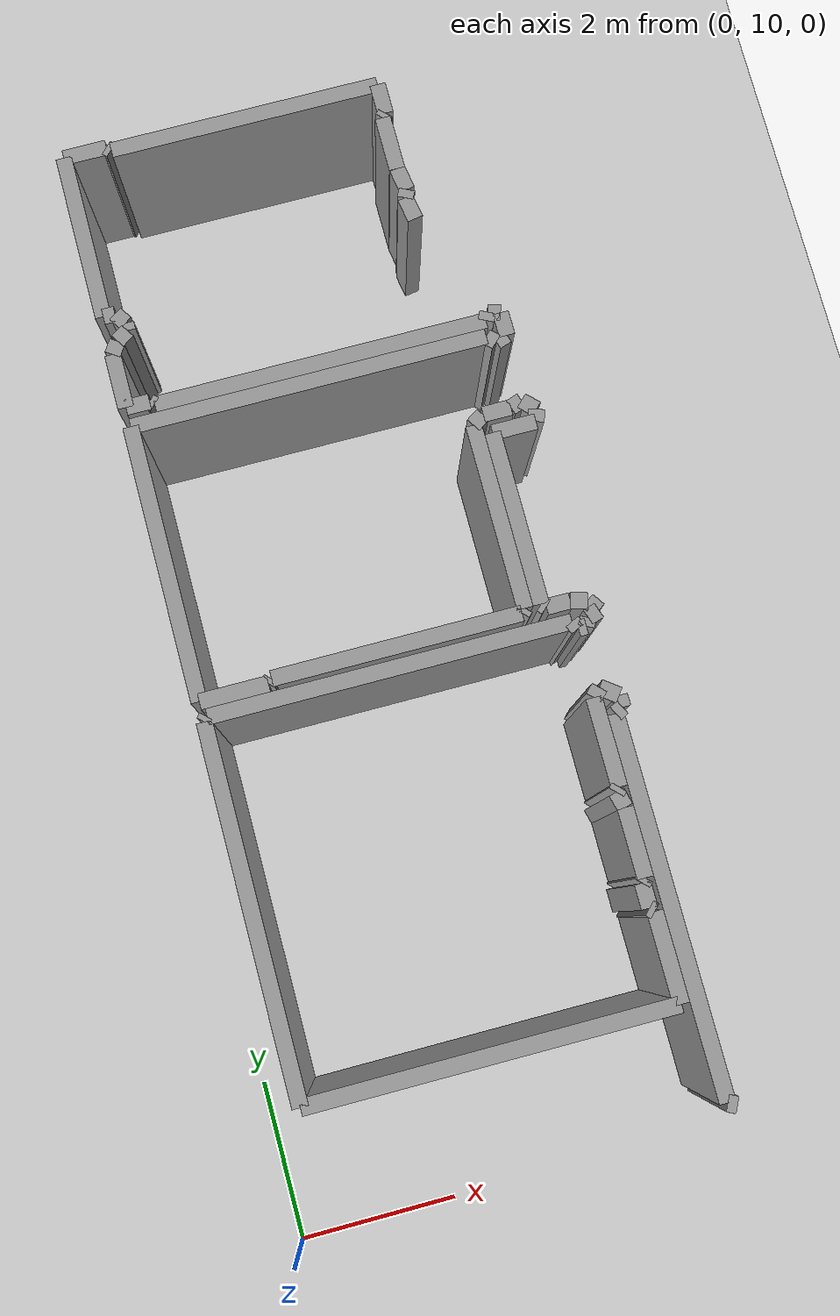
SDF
<sdf version="1.4">
 <world name="1_wall">
  <model name="ground_plane">
   <static>1</static>
   <link name="link">
    <collision name="collision">
     <geometry><plane><normal>0 0 1</normal><size>1000 1000</size></plane></geometry>
     <surface><friction><ode><mu>100</mu><mu2>50</mu2></ode></friction></surface>
    </collision>
    <visual name="visual">
     <cast_shadows>0</cast_shadows>
     <geometry><plane><normal>0 0 1</normal><size>10000 10000</size></plane></geometry>
     <material>
      <script><uri>file://media/materials/scripts/gazebo.material</uri><name>Gazebo/Grey</name></script>
     </material>
    </visual>
    <velocity_decay><linear>0</linear><angular>0</angular></velocity_decay>
   </link>
  </model>
  <model name="Wall_65">
   <static>1</static>
   <link name="Wall_65">
    <collision name="Wall_Collision_65">
     <geometry><box><size>0.111803398875 0.2 2.5</size></box></geometry>
     <pose>0 0 1.25 0 -0 0</pose>
    </collision>
    <visual name="Wall_Visual_65">
     <pose>0 0 1.25 0 -0 0</pose>
     <geometry><box><size>0.111803398875 0.2 2.5</size></box></geometry>
     <material>
      <script><uri>file://media/materials/scripts/gazebo.material</uri><name>Gazebo/Grey</name></script>
     </material>
    </visual>
    <velocity_decay><linear>0</linear><angular>0</angular></velocity_decay>
    <pose>5.35 10.575 0 0 0 2.67794504459</pose>
   </link>
  </model>
  <model name="Wall_66">
   <static>1</static>
   <link name="Wall_66">
    <collision name="Wall_Collision_66">
     <geometry><box><size>4.65 0.2 2.5</size></box></geometry>
     <pose>0 0 1.25 0 -0 0</pose>
    </collision>
    <visual name="Wall_Visual_66">
     <pose>0 0 1.25 0 -0 0</pose>
     <geometry><box><size>4.65 0.2 2.5</size></box></geometry>
     <material>
      <script><uri>file://media/materials/scripts/gazebo.material</uri><name>Gazebo/Grey</name></script>
     </material>
    </visual>
    <velocity_decay><linear>0</linear><angular>0</angular></velocity_decay>
    <pose>5.3 12.925 0 0 0 1.57079632679</pose>
   </link>
  </model>
  <model name="Wall_67">
   <static>1</static>
   <link name="Wall_67">
    <collision name="Wall_Collision_67">
     <geometry><box><size>0.111803398875 0.2 2.5</size></box></geometry>
     <pose>0 0 1.25 0 -0 0</pose>
    </collision>
    <visual name="Wall_Visual_67">
     <pose>0 0 1.25 0 -0 0</pose>
     <geometry><box><size>0.111803398875 0.2 2.5</size></box></geometry>
     <material>
      <script><uri>file://media/materials/scripts/gazebo.material</uri><name>Gazebo/Grey</name></script>
     </material>
    </visual>
    <velocity_decay><linear>0</linear><angular>0</angular></velocity_decay>
    <pose>5.35 15.275 0 0 0 0.463647609001</pose>
   </link>
  </model>
  <model name="Wall_68">
   <static>1</static>
   <link name="Wall_68">
    <collision name="Wall_Collision_68">
     <geometry><box><size>0.15 0.2 2.5</size></box></geometry>
     <pose>0 0 1.25 0 -0 0</pose>
    </collision>
    <visual name="Wall_Visual_68">
     <pose>0 0 1.25 0 -0 0</pose>
     <geometry><box><size>0.15 0.2 2.5</size></box></geometry>
     <material>
      <script><uri>file://media/materials/scripts/gazebo.material</uri><name>Gazebo/Grey</name></script>
     </material>
    </visual>
    <velocity_decay><linear>0</linear><angular>0</angular></velocity_decay>
    <pose>5.4 15.375 0 0 0 1.57079632679</pose>
   </link>
  </model>
  <model name="Wall_69">
   <static>1</static>
   <link name="Wall_69">
    <collision name="Wall_Collision_69">
     <geometry><box><size>0.25 0.2 2.5</size></box></geometry>
     <pose>0 0 1.25 0 -0 0</pose>
    </collision>
    <visual name="Wall_Visual_69">
     <pose>0 0 1.25 0 -0 0</pose>
     <geometry><box><size>0.25 0.2 2.5</size></box></geometry>
     <material>
      <script><uri>file://media/materials/scripts/gazebo.material</uri><name>Gazebo/Grey</name></script>
     </material>
    </visual>
    <velocity_decay><linear>0</linear><angular>0</angular></velocity_decay>
    <pose>5.3 15.525 0 0 0 2.4980915448</pose>
   </link>
  </model>
  <model name="Wall_70">
   <static>1</static>
   <link name="Wall_70">
    <collision name="Wall_Collision_70">
     <geometry><box><size>0.141421356237 0.2 2.5</size></box></geometry>
     <pose>0 0 1.25 0 -0 0</pose>
    </collision>
    <visual name="Wall_Visual_70">
     <pose>0 0 1.25 0 -0 0</pose>
     <geometry><box><size>0.141421356237 0.2 2.5</size></box></geometry>
     <material>
      <script><uri>file://media/materials/scripts/gazebo.material</uri><name>Gazebo/Grey</name></script>
     </material>
    </visual>
    <velocity_decay><linear>0</linear><angular>0</angular></velocity_decay>
    <pose>5.15 15.55 0 0 0 -2.35619449019</pose>
   </link>
  </model>
  <model name="Wall_71">
   <static>1</static>
   <link name="Wall_71">
    <collision name="Wall_Collision_71">
     <geometry><box><size>1.1 0.2 2.5</size></box></geometry>
     <pose>0 0 1.25 0 -0 0</pose>
    </collision>
    <visual name="Wall_Visual_71">
     <pose>0 0 1.25 0 -0 0</pose>
     <geometry><box><size>1.1 0.2 2.5</size></box></geometry>
     <material>
      <script><uri>file://media/materials/scripts/gazebo.material</uri><name>Gazebo/Grey</name></script>
     </material>
    </visual>
    <velocity_decay><linear>0</linear><angular>0</angular></velocity_decay>
    <pose>5.1 14.95 0 0 0 -1.57079632679</pose>
   </link>
  </model>
  <model name="Wall_72">
   <static>1</static>
   <link name="Wall_72">
    <collision name="Wall_Collision_72">
     <geometry><box><size>0.0707106781187 0.2 2.5</size></box></geometry>
     <pose>0 0 1.25 0 -0 0</pose>
    </collision>
    <visual name="Wall_Visual_72">
     <pose>0 0 1.25 0 -0 0</pose>
     <geometry><box><size>0.0707106781187 0.2 2.5</size></box></geometry>
     <material>
      <script><uri>file://media/materials/scripts/gazebo.material</uri><name>Gazebo/Grey</name></script>
     </material>
    </visual>
    <velocity_decay><linear>0</linear><angular>0</angular></velocity_decay>
    <pose>5.075 14.375 0 0 0 -2.35619449019</pose>
   </link>
  </model>
  <model name="Wall_73">
   <static>1</static>
   <link name="Wall_73">
    <collision name="Wall_Collision_73">
     <geometry><box><size>0.206155281281 0.2 2.5</size></box></geometry>
     <pose>0 0 1.25 0 -0 0</pose>
    </collision>
    <visual name="Wall_Visual_73">
     <pose>0 0 1.25 0 -0 0</pose>
     <geometry><box><size>0.206155281281 0.2 2.5</size></box></geometry>
     <material>
      <script><uri>file://media/materials/scripts/gazebo.material</uri><name>Gazebo/Grey</name></script>
     </material>
    </visual>
    <velocity_decay><linear>0</linear><angular>0</angular></velocity_decay>
    <pose>5.075 14.25 0 0 0 -1.32581766367</pose>
   </link>
  </model>
  <model name="Wall_74">
   <static>1</static>
   <link name="Wall_74">
    <collision name="Wall_Collision_74">
     <geometry><box><size>0.85 0.2 2.5</size></box></geometry>
     <pose>0 0 1.25 0 -0 0</pose>
    </collision>
    <visual name="Wall_Visual_74">
     <pose>0 0 1.25 0 -0 0</pose>
     <geometry><box><size>0.85 0.2 2.5</size></box></geometry>
     <material>
      <script><uri>file://media/materials/scripts/gazebo.material</uri><name>Gazebo/Grey</name></script>
     </material>
    </visual>
    <velocity_decay><linear>0</linear><angular>0</angular></velocity_decay>
    <pose>5.1 13.725 0 0 0 -1.57079632679</pose>
   </link>
  </model>
  <model name="Wall_75">
   <static>1</static>
   <link name="Wall_75">
    <collision name="Wall_Collision_75">
     <geometry><box><size>0.0707106781187 0.2 2.5</size></box></geometry>
     <pose>0 0 1.25 0 -0 0</pose>
    </collision>
    <visual name="Wall_Visual_75">
     <pose>0 0 1.25 0 -0 0</pose>
     <geometry><box><size>0.0707106781187 0.2 2.5</size></box></geometry>
     <material>
      <script><uri>file://media/materials/scripts/gazebo.material</uri><name>Gazebo/Grey</name></script>
     </material>
    </visual>
    <velocity_decay><linear>0</linear><angular>0</angular></velocity_decay>
    <pose>5.075 13.275 0 0 0 -2.35619449019</pose>
   </link>
  </model>
  <model name="Wall_76">
   <static>1</static>
   <link name="Wall_76">
    <collision name="Wall_Collision_76">
     <geometry><box><size>0.3 0.2 2.5</size></box></geometry>
     <pose>0 0 1.25 0 -0 0</pose>
    </collision>
    <visual name="Wall_Visual_76">
     <pose>0 0 1.25 0 -0 0</pose>
     <geometry><box><size>0.3 0.2 2.5</size></box></geometry>
     <material>
      <script><uri>file://media/materials/scripts/gazebo.material</uri><name>Gazebo/Grey</name></script>
     </material>
    </visual>
    <velocity_decay><linear>0</linear><angular>0</angular></velocity_decay>
    <pose>5.05 13.1 0 0 0 -1.57079632679</pose>
   </link>
  </model>
  <model name="Wall_77">
   <static>1</static>
   <link name="Wall_77">
    <collision name="Wall_Collision_77">
     <geometry><box><size>0.0707106781187 0.2 2.5</size></box></geometry>
     <pose>0 0 1.25 0 -0 0</pose>
    </collision>
    <visual name="Wall_Visual_77">
     <pose>0 0 1.25 0 -0 0</pose>
     <geometry><box><size>0.0707106781187 0.2 2.5</size></box></geometry>
     <material>
      <script><uri>file://media/materials/scripts/gazebo.material</uri><name>Gazebo/Grey</name></script>
     </material>
    </visual>
    <velocity_decay><linear>0</linear><angular>0</angular></velocity_decay>
    <pose>5.075 12.925 0 0 0 -0.785398163397</pose>
   </link>
  </model>
  <model name="Wall_78">
   <static>1</static>
   <link name="Wall_78">
    <collision name="Wall_Collision_78">
     <geometry><box><size>1.1 0.2 2.5</size></box></geometry>
     <pose>0 0 1.25 0 -0 0</pose>
    </collision>
    <visual name="Wall_Visual_78">
     <pose>0 0 1.25 0 -0 0</pose>
     <geometry><box><size>1.1 0.2 2.5</size></box></geometry>
     <material>
      <script><uri>file://media/materials/scripts/gazebo.material</uri><name>Gazebo/Grey</name></script>
     </material>
    </visual>
    <velocity_decay><linear>0</linear><angular>0</angular></velocity_decay>
    <pose>5.1 12.35 0 0 0 -1.57079632679</pose>
   </link>
  </model>
  <model name="Wall_79">
   <static>1</static>
   <link name="Wall_79">
    <collision name="Wall_Collision_79">
     <geometry><box><size>4.55 0.2 2.5</size></box></geometry>
     <pose>0 0 1.25 0 -0 0</pose>
    </collision>
    <visual name="Wall_Visual_79">
     <pose>0 0 1.25 0 -0 0</pose>
     <geometry><box><size>4.55 0.2 2.5</size></box></geometry>
     <material>
      <script><uri>file://media/materials/scripts/gazebo.material</uri><name>Gazebo/Grey</name></script>
     </material>
    </visual>
    <velocity_decay><linear>0</linear><angular>0</angular></velocity_decay>
    <pose>2.825 11.8 0 0 0 3.14159265359</pose>
   </link>
  </model>
  <model name="Wall_80">
   <static>1</static>
   <link name="Wall_80">
    <collision name="Wall_Collision_80">
     <geometry><box><size>4.6 0.2 2.5</size></box></geometry>
     <pose>0 0 1.25 0 -0 0</pose>
    </collision>
    <visual name="Wall_Visual_80">
     <pose>0 0 1.25 0 -0 0</pose>
     <geometry><box><size>4.6 0.2 2.5</size></box></geometry>
     <material>
      <script><uri>file://media/materials/scripts/gazebo.material</uri><name>Gazebo/Grey</name></script>
     </material>
    </visual>
    <velocity_decay><linear>0</linear><angular>0</angular></velocity_decay>
    <pose>0.55 14.1 0 0 0 1.57079632679</pose>
   </link>
  </model>
  <model name="Wall_81">
   <static>1</static>
   <link name="Wall_81">
    <collision name="Wall_Collision_81">
     <geometry><box><size>0.0707106781187 0.2 2.5</size></box></geometry>
     <pose>0 0 1.25 0 -0 0</pose>
    </collision>
    <visual name="Wall_Visual_81">
     <pose>0 0 1.25 0 -0 0</pose>
     <geometry><box><size>0.0707106781187 0.2 2.5</size></box></geometry>
     <material>
      <script><uri>file://media/materials/scripts/gazebo.material</uri><name>Gazebo/Grey</name></script>
     </material>
    </visual>
    <velocity_decay><linear>0</linear><angular>0</angular></velocity_decay>
    <pose>0.575 16.425 0 0 0 0.785398163397</pose>
   </link>
  </model>
  <model name="Wall_82">
   <static>1</static>
   <link name="Wall_82">
    <collision name="Wall_Collision_82">
     <geometry><box><size>4.5 0.2 2.5</size></box></geometry>
     <pose>0 0 1.25 0 -0 0</pose>
    </collision>
    <visual name="Wall_Visual_82">
     <pose>0 0 1.25 0 -0 0</pose>
     <geometry><box><size>4.5 0.2 2.5</size></box></geometry>
     <material>
      <script><uri>file://media/materials/scripts/gazebo.material</uri><name>Gazebo/Grey</name></script>
     </material>
    </visual>
    <velocity_decay><linear>0</linear><angular>0</angular></velocity_decay>
    <pose>2.85 16.45 0 0 0 0.0</pose>
   </link>
  </model>
  <model name="Wall_83">
   <static>1</static>
   <link name="Wall_83">
    <collision name="Wall_Collision_83">
     <geometry><box><size>0.111803398875 0.2 2.5</size></box></geometry>
     <pose>0 0 1.25 0 -0 0</pose>
    </collision>
    <visual name="Wall_Visual_83">
     <pose>0 0 1.25 0 -0 0</pose>
     <geometry><box><size>0.111803398875 0.2 2.5</size></box></geometry>
     <material>
      <script><uri>file://media/materials/scripts/gazebo.material</uri><name>Gazebo/Grey</name></script>
     </material>
    </visual>
    <velocity_decay><linear>0</linear><angular>0</angular></velocity_decay>
    <pose>5.125 16.4 0 0 0 -1.10714871779</pose>
   </link>
  </model>
  <model name="Wall_84">
   <static>1</static>
   <link name="Wall_84">
    <collision name="Wall_Collision_84">
     <geometry><box><size>0.1 0.2 2.5</size></box></geometry>
     <pose>0 0 1.25 0 -0 0</pose>
    </collision>
    <visual name="Wall_Visual_84">
     <pose>0 0 1.25 0 -0 0</pose>
     <geometry><box><size>0.1 0.2 2.5</size></box></geometry>
     <material>
      <script><uri>file://media/materials/scripts/gazebo.material</uri><name>Gazebo/Grey</name></script>
     </material>
    </visual>
    <velocity_decay><linear>0</linear><angular>0</angular></velocity_decay>
    <pose>5.2 16.35 0 0 0 0.0</pose>
   </link>
  </model>
  <model name="Wall_85">
   <static>1</static>
   <link name="Wall_85">
    <collision name="Wall_Collision_85">
     <geometry><box><size>0.111803398875 0.2 2.5</size></box></geometry>
     <pose>0 0 1.25 0 -0 0</pose>
    </collision>
    <visual name="Wall_Visual_85">
     <pose>0 0 1.25 0 -0 0</pose>
     <geometry><box><size>0.111803398875 0.2 2.5</size></box></geometry>
     <material>
      <script><uri>file://media/materials/scripts/gazebo.material</uri><name>Gazebo/Grey</name></script>
     </material>
    </visual>
    <velocity_decay><linear>0</linear><angular>0</angular></velocity_decay>
    <pose>5.275 16.4 0 0 0 1.10714871779</pose>
   </link>
  </model>
  <model name="Wall_86">
   <static>1</static>
   <link name="Wall_86">
    <collision name="Wall_Collision_86">
     <geometry><box><size>0.158113883008 0.2 2.5</size></box></geometry>
     <pose>0 0 1.25 0 -0 0</pose>
    </collision>
    <visual name="Wall_Visual_86">
     <pose>0 0 1.25 0 -0 0</pose>
     <geometry><box><size>0.158113883008 0.2 2.5</size></box></geometry>
     <material>
      <script><uri>file://media/materials/scripts/gazebo.material</uri><name>Gazebo/Grey</name></script>
     </material>
    </visual>
    <velocity_decay><linear>0</linear><angular>0</angular></velocity_decay>
    <pose>5.375 16.475 0 0 0 0.321750554397</pose>
   </link>
  </model>
  <model name="Wall_87">
   <static>1</static>
   <link name="Wall_87">
    <collision name="Wall_Collision_87">
     <geometry><box><size>0.180277563773 0.2 2.5</size></box></geometry>
     <pose>0 0 1.25 0 -0 0</pose>
    </collision>
    <visual name="Wall_Visual_87">
     <pose>0 0 1.25 0 -0 0</pose>
     <geometry><box><size>0.180277563773 0.2 2.5</size></box></geometry>
     <material>
      <script><uri>file://media/materials/scripts/gazebo.material</uri><name>Gazebo/Grey</name></script>
     </material>
    </visual>
    <velocity_decay><linear>0</linear><angular>0</angular></velocity_decay>
    <pose>5.4 16.575 0 0 0 2.15879893034</pose>
   </link>
  </model>
  <model name="Wall_88">
   <static>1</static>
   <link name="Wall_88">
    <collision name="Wall_Collision_88">
     <geometry><box><size>0.206155281281 0.2 2.5</size></box></geometry>
     <pose>0 0 1.25 0 -0 0</pose>
    </collision>
    <visual name="Wall_Visual_88">
     <pose>0 0 1.25 0 -0 0</pose>
     <geometry><box><size>0.206155281281 0.2 2.5</size></box></geometry>
     <material>
      <script><uri>file://media/materials/scripts/gazebo.material</uri><name>Gazebo/Grey</name></script>
     </material>
    </visual>
    <velocity_decay><linear>0</linear><angular>0</angular></velocity_decay>
    <pose>5.25 16.675 0 0 0 2.89661399046</pose>
   </link>
  </model>
  <model name="Wall_89">
   <static>1</static>
   <link name="Wall_89">
    <collision name="Wall_Collision_89">
     <geometry><box><size>0.3 0.2 2.5</size></box></geometry>
     <pose>0 0 1.25 0 -0 0</pose>
    </collision>
    <visual name="Wall_Visual_89">
     <pose>0 0 1.25 0 -0 0</pose>
     <geometry><box><size>0.3 0.2 2.5</size></box></geometry>
     <material>
      <script><uri>file://media/materials/scripts/gazebo.material</uri><name>Gazebo/Grey</name></script>
     </material>
    </visual>
    <velocity_decay><linear>0</linear><angular>0</angular></velocity_decay>
    <pose>5.0 16.7 0 0 0 3.14159265359</pose>
   </link>
  </model>
  <model name="Wall_90">
   <static>1</static>
   <link name="Wall_90">
    <collision name="Wall_Collision_90">
     <geometry><box><size>0.0707106781187 0.2 2.5</size></box></geometry>
     <pose>0 0 1.25 0 -0 0</pose>
    </collision>
    <visual name="Wall_Visual_90">
     <pose>0 0 1.25 0 -0 0</pose>
     <geometry><box><size>0.0707106781187 0.2 2.5</size></box></geometry>
     <material>
      <script><uri>file://media/materials/scripts/gazebo.material</uri><name>Gazebo/Grey</name></script>
     </material>
    </visual>
    <velocity_decay><linear>0</linear><angular>0</angular></velocity_decay>
    <pose>4.825 16.725 0 0 0 2.35619449019</pose>
   </link>
  </model>
  <model name="Wall_91">
   <static>1</static>
   <link name="Wall_91">
    <collision name="Wall_Collision_91">
     <geometry><box><size>2.2 0.2 2.5</size></box></geometry>
     <pose>0 0 1.25 0 -0 0</pose>
    </collision>
    <visual name="Wall_Visual_91">
     <pose>0 0 1.25 0 -0 0</pose>
     <geometry><box><size>2.2 0.2 2.5</size></box></geometry>
     <material>
      <script><uri>file://media/materials/scripts/gazebo.material</uri><name>Gazebo/Grey</name></script>
     </material>
    </visual>
    <velocity_decay><linear>0</linear><angular>0</angular></velocity_decay>
    <pose>4.8 17.85 0 0 0 1.57079632679</pose>
   </link>
  </model>
  <model name="Wall_92">
   <static>1</static>
   <link name="Wall_92">
    <collision name="Wall_Collision_92">
     <geometry><box><size>0.55 0.2 2.5</size></box></geometry>
     <pose>0 0 1.25 0 -0 0</pose>
    </collision>
    <visual name="Wall_Visual_92">
     <pose>0 0 1.25 0 -0 0</pose>
     <geometry><box><size>0.55 0.2 2.5</size></box></geometry>
     <material>
      <script><uri>file://media/materials/scripts/gazebo.material</uri><name>Gazebo/Grey</name></script>
     </material>
    </visual>
    <velocity_decay><linear>0</linear><angular>0</angular></velocity_decay>
    <pose>5.075 18.95 0 0 0 0.0</pose>
   </link>
  </model>
  <model name="Wall_93">
   <static>1</static>
   <link name="Wall_93">
    <collision name="Wall_Collision_93">
     <geometry><box><size>0.158113883008 0.2 2.5</size></box></geometry>
     <pose>0 0 1.25 0 -0 0</pose>
    </collision>
    <visual name="Wall_Visual_93">
     <pose>0 0 1.25 0 -0 0</pose>
     <geometry><box><size>0.158113883008 0.2 2.5</size></box></geometry>
     <material>
      <script><uri>file://media/materials/scripts/gazebo.material</uri><name>Gazebo/Grey</name></script>
     </material>
    </visual>
    <velocity_decay><linear>0</linear><angular>0</angular></velocity_decay>
    <pose>5.375 19.025 0 0 0 1.2490457724</pose>
   </link>
  </model>
  <model name="Wall_94">
   <static>1</static>
   <link name="Wall_94">
    <collision name="Wall_Collision_94">
     <geometry><box><size>0.212132034356 0.2 2.5</size></box></geometry>
     <pose>0 0 1.25 0 -0 0</pose>
    </collision>
    <visual name="Wall_Visual_94">
     <pose>0 0 1.25 0 -0 0</pose>
     <geometry><box><size>0.212132034356 0.2 2.5</size></box></geometry>
     <material>
      <script><uri>file://media/materials/scripts/gazebo.material</uri><name>Gazebo/Grey</name></script>
     </material>
    </visual>
    <velocity_decay><linear>0</linear><angular>0</angular></velocity_decay>
    <pose>5.325 19.175 0 0 0 2.35619449019</pose>
   </link>
  </model>
  <model name="Wall_95">
   <static>1</static>
   <link name="Wall_95">
    <collision name="Wall_Collision_95">
     <geometry><box><size>0.158113883008 0.2 2.5</size></box></geometry>
     <pose>0 0 1.25 0 -0 0</pose>
    </collision>
    <visual name="Wall_Visual_95">
     <pose>0 0 1.25 0 -0 0</pose>
     <geometry><box><size>0.158113883008 0.2 2.5</size></box></geometry>
     <material>
      <script><uri>file://media/materials/scripts/gazebo.material</uri><name>Gazebo/Grey</name></script>
     </material>
    </visual>
    <velocity_decay><linear>0</linear><angular>0</angular></velocity_decay>
    <pose>5.175 19.225 0 0 0 -2.81984209919</pose>
   </link>
  </model>
  <model name="Wall_96">
   <static>1</static>
   <link name="Wall_96">
    <collision name="Wall_Collision_96">
     <geometry><box><size>0.35 0.2 2.5</size></box></geometry>
     <pose>0 0 1.25 0 -0 0</pose>
    </collision>
    <visual name="Wall_Visual_96">
     <pose>0 0 1.25 0 -0 0</pose>
     <geometry><box><size>0.35 0.2 2.5</size></box></geometry>
     <material>
      <script><uri>file://media/materials/scripts/gazebo.material</uri><name>Gazebo/Grey</name></script>
     </material>
    </visual>
    <velocity_decay><linear>0</linear><angular>0</angular></velocity_decay>
    <pose>4.925 19.2 0 0 0 3.14159265359</pose>
   </link>
  </model>
  <model name="Wall_97">
   <static>1</static>
   <link name="Wall_97">
    <collision name="Wall_Collision_97">
     <geometry><box><size>0.180277563773 0.2 2.5</size></box></geometry>
     <pose>0 0 1.25 0 -0 0</pose>
    </collision>
    <visual name="Wall_Visual_97">
     <pose>0 0 1.25 0 -0 0</pose>
     <geometry><box><size>0.180277563773 0.2 2.5</size></box></geometry>
     <material>
      <script><uri>file://media/materials/scripts/gazebo.material</uri><name>Gazebo/Grey</name></script>
     </material>
    </visual>
    <velocity_decay><linear>0</linear><angular>0</angular></velocity_decay>
    <pose>4.675 19.15 0 0 0 -2.55359005004</pose>
   </link>
  </model>
  <model name="Wall_98">
   <static>1</static>
   <link name="Wall_98">
    <collision name="Wall_Collision_98">
     <geometry><box><size>2.35 0.2 2.5</size></box></geometry>
     <pose>0 0 1.25 0 -0 0</pose>
    </collision>
    <visual name="Wall_Visual_98">
     <pose>0 0 1.25 0 -0 0</pose>
     <geometry><box><size>2.35 0.2 2.5</size></box></geometry>
     <material>
      <script><uri>file://media/materials/scripts/gazebo.material</uri><name>Gazebo/Grey</name></script>
     </material>
    </visual>
    <velocity_decay><linear>0</linear><angular>0</angular></velocity_decay>
    <pose>4.6 17.925 0 0 0 -1.57079632679</pose>
   </link>
  </model>
  <model name="Wall_99">
   <static>1</static>
   <link name="Wall_99">
    <collision name="Wall_Collision_99">
     <geometry><box><size>0.0707106781187 0.2 2.5</size></box></geometry>
     <pose>0 0 1.25 0 -0 0</pose>
    </collision>
    <visual name="Wall_Visual_99">
     <pose>0 0 1.25 0 -0 0</pose>
     <geometry><box><size>0.0707106781187 0.2 2.5</size></box></geometry>
     <material>
      <script><uri>file://media/materials/scripts/gazebo.material</uri><name>Gazebo/Grey</name></script>
     </material>
    </visual>
    <velocity_decay><linear>0</linear><angular>0</angular></velocity_decay>
    <pose>4.575 16.725 0 0 0 -2.35619449019</pose>
   </link>
  </model>
  <model name="Wall_100">
   <static>1</static>
   <link name="Wall_100">
    <collision name="Wall_Collision_100">
     <geometry><box><size>3.1 0.2 2.5</size></box></geometry>
     <pose>0 0 1.25 0 -0 0</pose>
    </collision>
    <visual name="Wall_Visual_100">
     <pose>0 0 1.25 0 -0 0</pose>
     <geometry><box><size>3.1 0.2 2.5</size></box></geometry>
     <material>
      <script><uri>file://media/materials/scripts/gazebo.material</uri><name>Gazebo/Grey</name></script>
     </material>
    </visual>
    <velocity_decay><linear>0</linear><angular>0</angular></velocity_decay>
    <pose>3.0 16.7 0 0 0 3.14159265359</pose>
   </link>
  </model>
  <model name="Wall_101">
   <static>1</static>
   <link name="Wall_101">
    <collision name="Wall_Collision_101">
     <geometry><box><size>0.0707106781187 0.2 2.5</size></box></geometry>
     <pose>0 0 1.25 0 -0 0</pose>
    </collision>
    <visual name="Wall_Visual_101">
     <pose>0 0 1.25 0 -0 0</pose>
     <geometry><box><size>0.0707106781187 0.2 2.5</size></box></geometry>
     <material>
      <script><uri>file://media/materials/scripts/gazebo.material</uri><name>Gazebo/Grey</name></script>
     </material>
    </visual>
    <velocity_decay><linear>0</linear><angular>0</angular></velocity_decay>
    <pose>1.425 16.675 0 0 0 -2.35619449019</pose>
   </link>
  </model>
  <model name="Wall_102">
   <static>1</static>
   <link name="Wall_102">
    <collision name="Wall_Collision_102">
     <geometry><box><size>0.85 0.2 2.5</size></box></geometry>
     <pose>0 0 1.25 0 -0 0</pose>
    </collision>
    <visual name="Wall_Visual_102">
     <pose>0 0 1.25 0 -0 0</pose>
     <geometry><box><size>0.85 0.2 2.5</size></box></geometry>
     <material>
      <script><uri>file://media/materials/scripts/gazebo.material</uri><name>Gazebo/Grey</name></script>
     </material>
    </visual>
    <velocity_decay><linear>0</linear><angular>0</angular></velocity_decay>
    <pose>0.975 16.65 0 0 0 3.14159265359</pose>
   </link>
  </model>
  <model name="Wall_103">
   <static>1</static>
   <link name="Wall_103">
    <collision name="Wall_Collision_103">
     <geometry><box><size>3.5 0.2 2.5</size></box></geometry>
     <pose>0 0 1.25 0 -0 0</pose>
    </collision>
    <visual name="Wall_Visual_103">
     <pose>0 0 1.25 0 -0 0</pose>
     <geometry><box><size>3.5 0.2 2.5</size></box></geometry>
     <material>
      <script><uri>file://media/materials/scripts/gazebo.material</uri><name>Gazebo/Grey</name></script>
     </material>
    </visual>
    <velocity_decay><linear>0</linear><angular>0</angular></velocity_decay>
    <pose>0.55 18.4 0 0 0 1.57079632679</pose>
   </link>
  </model>
  <model name="Wall_104">
   <static>1</static>
   <link name="Wall_104">
    <collision name="Wall_Collision_104">
     <geometry><box><size>4.5 0.2 2.5</size></box></geometry>
     <pose>0 0 1.25 0 -0 0</pose>
    </collision>
    <visual name="Wall_Visual_104">
     <pose>0 0 1.25 0 -0 0</pose>
     <geometry><box><size>4.5 0.2 2.5</size></box></geometry>
     <material>
      <script><uri>file://media/materials/scripts/gazebo.material</uri><name>Gazebo/Grey</name></script>
     </material>
    </visual>
    <velocity_decay><linear>0</linear><angular>0</angular></velocity_decay>
    <pose>2.8 20.15 0 0 0 0.0</pose>
   </link>
  </model>
  <model name="Wall_105">
   <static>1</static>
   <link name="Wall_105">
    <collision name="Wall_Collision_105">
     <geometry><box><size>0.141421356237 0.2 2.5</size></box></geometry>
     <pose>0 0 1.25 0 -0 0</pose>
    </collision>
    <visual name="Wall_Visual_105">
     <pose>0 0 1.25 0 -0 0</pose>
     <geometry><box><size>0.141421356237 0.2 2.5</size></box></geometry>
     <material>
      <script><uri>file://media/materials/scripts/gazebo.material</uri><name>Gazebo/Grey</name></script>
     </material>
    </visual>
    <velocity_decay><linear>0</linear><angular>0</angular></velocity_decay>
    <pose>5.1 20.1 0 0 0 -0.785398163397</pose>
   </link>
  </model>
  <model name="Wall_106">
   <static>1</static>
   <link name="Wall_106">
    <collision name="Wall_Collision_106">
     <geometry><box><size>0.158113883008 0.2 2.5</size></box></geometry>
     <pose>0 0 1.25 0 -0 0</pose>
    </collision>
    <visual name="Wall_Visual_106">
     <pose>0 0 1.25 0 -0 0</pose>
     <geometry><box><size>0.158113883008 0.2 2.5</size></box></geometry>
     <material>
      <script><uri>file://media/materials/scripts/gazebo.material</uri><name>Gazebo/Grey</name></script>
     </material>
    </visual>
    <velocity_decay><linear>0</linear><angular>0</angular></velocity_decay>
    <pose>5.225 20.075 0 0 0 0.321750554397</pose>
   </link>
  </model>
  <model name="Wall_107">
   <static>1</static>
   <link name="Wall_107">
    <collision name="Wall_Collision_107">
     <geometry><box><size>0.3 0.2 2.5</size></box></geometry>
     <pose>0 0 1.25 0 -0 0</pose>
    </collision>
    <visual name="Wall_Visual_107">
     <pose>0 0 1.25 0 -0 0</pose>
     <geometry><box><size>0.3 0.2 2.5</size></box></geometry>
     <material>
      <script><uri>file://media/materials/scripts/gazebo.material</uri><name>Gazebo/Grey</name></script>
     </material>
    </visual>
    <velocity_decay><linear>0</linear><angular>0</angular></velocity_decay>
    <pose>5.3 20.25 0 0 0 1.57079632679</pose>
   </link>
  </model>
  <model name="Wall_108">
   <static>1</static>
   <link name="Wall_108">
    <collision name="Wall_Collision_108">
     <geometry><box><size>0.158113883008 0.2 2.5</size></box></geometry>
     <pose>0 0 1.25 0 -0 0</pose>
    </collision>
    <visual name="Wall_Visual_108">
     <pose>0 0 1.25 0 -0 0</pose>
     <geometry><box><size>0.158113883008 0.2 2.5</size></box></geometry>
     <material>
      <script><uri>file://media/materials/scripts/gazebo.material</uri><name>Gazebo/Grey</name></script>
     </material>
    </visual>
    <velocity_decay><linear>0</linear><angular>0</angular></velocity_decay>
    <pose>5.225 20.425 0 0 0 2.81984209919</pose>
   </link>
  </model>
  <model name="Wall_109">
   <static>1</static>
   <link name="Wall_109">
    <collision name="Wall_Collision_109">
     <geometry><box><size>0.111803398875 0.2 2.5</size></box></geometry>
     <pose>0 0 1.25 0 -0 0</pose>
    </collision>
    <visual name="Wall_Visual_109">
     <pose>0 0 1.25 0 -0 0</pose>
     <geometry><box><size>0.111803398875 0.2 2.5</size></box></geometry>
     <material>
      <script><uri>file://media/materials/scripts/gazebo.material</uri><name>Gazebo/Grey</name></script>
     </material>
    </visual>
    <velocity_decay><linear>0</linear><angular>0</angular></velocity_decay>
    <pose>5.125 20.4 0 0 0 -2.0344439358</pose>
   </link>
  </model>
  <model name="Wall_110">
   <static>1</static>
   <link name="Wall_110">
    <collision name="Wall_Collision_110">
     <geometry><box><size>4.2 0.2 2.5</size></box></geometry>
     <pose>0 0 1.25 0 -0 0</pose>
    </collision>
    <visual name="Wall_Visual_110">
     <pose>0 0 1.25 0 -0 0</pose>
     <geometry><box><size>4.2 0.2 2.5</size></box></geometry>
     <material>
      <script><uri>file://media/materials/scripts/gazebo.material</uri><name>Gazebo/Grey</name></script>
     </material>
    </visual>
    <velocity_decay><linear>0</linear><angular>0</angular></velocity_decay>
    <pose>3.0 20.35 0 0 0 3.14159265359</pose>
   </link>
  </model>
  <model name="Wall_111">
   <static>1</static>
   <link name="Wall_111">
    <collision name="Wall_Collision_111">
     <geometry><box><size>0.0707106781187 0.2 2.5</size></box></geometry>
     <pose>0 0 1.25 0 -0 0</pose>
    </collision>
    <visual name="Wall_Visual_111">
     <pose>0 0 1.25 0 -0 0</pose>
     <geometry><box><size>0.0707106781187 0.2 2.5</size></box></geometry>
     <material>
      <script><uri>file://media/materials/scripts/gazebo.material</uri><name>Gazebo/Grey</name></script>
     </material>
    </visual>
    <velocity_decay><linear>0</linear><angular>0</angular></velocity_decay>
    <pose>0.875 20.375 0 0 0 2.35619449019</pose>
   </link>
  </model>
  <model name="Wall_112">
   <static>1</static>
   <link name="Wall_112">
    <collision name="Wall_Collision_112">
     <geometry><box><size>0.3 0.2 2.5</size></box></geometry>
     <pose>0 0 1.25 0 -0 0</pose>
    </collision>
    <visual name="Wall_Visual_112">
     <pose>0 0 1.25 0 -0 0</pose>
     <geometry><box><size>0.3 0.2 2.5</size></box></geometry>
     <material>
      <script><uri>file://media/materials/scripts/gazebo.material</uri><name>Gazebo/Grey</name></script>
     </material>
    </visual>
    <velocity_decay><linear>0</linear><angular>0</angular></velocity_decay>
    <pose>0.7 20.4 0 0 0 3.14159265359</pose>
   </link>
  </model>
  <model name="Wall_113">
   <static>1</static>
   <link name="Wall_113">
    <collision name="Wall_Collision_113">
     <geometry><box><size>0.7 0.2 2.5</size></box></geometry>
     <pose>0 0 1.25 0 -0 0</pose>
    </collision>
    <visual name="Wall_Visual_113">
     <pose>0 0 1.25 0 -0 0</pose>
     <geometry><box><size>0.7 0.2 2.5</size></box></geometry>
     <material>
      <script><uri>file://media/materials/scripts/gazebo.material</uri><name>Gazebo/Grey</name></script>
     </material>
    </visual>
    <velocity_decay><linear>0</linear><angular>0</angular></velocity_decay>
    <pose>0.55 20.75 0 0 0 1.57079632679</pose>
   </link>
  </model>
  <model name="Wall_114">
   <static>1</static>
   <link name="Wall_114">
    <collision name="Wall_Collision_114">
     <geometry><box><size>0.180277563773 0.2 2.5</size></box></geometry>
     <pose>0 0 1.25 0 -0 0</pose>
    </collision>
    <visual name="Wall_Visual_114">
     <pose>0 0 1.25 0 -0 0</pose>
     <geometry><box><size>0.180277563773 0.2 2.5</size></box></geometry>
     <material>
      <script><uri>file://media/materials/scripts/gazebo.material</uri><name>Gazebo/Grey</name></script>
     </material>
    </visual>
    <velocity_decay><linear>0</linear><angular>0</angular></velocity_decay>
    <pose>0.6 21.175 0 0 0 0.982793723247</pose>
   </link>
  </model>
  <model name="Wall_115">
   <static>1</static>
   <link name="Wall_115">
    <collision name="Wall_Collision_115">
     <geometry><box><size>0.180277563773 0.2 2.5</size></box></geometry>
     <pose>0 0 1.25 0 -0 0</pose>
    </collision>
    <visual name="Wall_Visual_115">
     <pose>0 0 1.25 0 -0 0</pose>
     <geometry><box><size>0.180277563773 0.2 2.5</size></box></geometry>
     <material>
      <script><uri>file://media/materials/scripts/gazebo.material</uri><name>Gazebo/Grey</name></script>
     </material>
    </visual>
    <velocity_decay><linear>0</linear><angular>0</angular></velocity_decay>
    <pose>0.725 21.3 0 0 0 0.588002603548</pose>
   </link>
  </model>
  <model name="Wall_116">
   <static>1</static>
   <link name="Wall_116">
    <collision name="Wall_Collision_116">
     <geometry><box><size>0.1 0.2 2.5</size></box></geometry>
     <pose>0 0 1.25 0 -0 0</pose>
    </collision>
    <visual name="Wall_Visual_116">
     <pose>0 0 1.25 0 -0 0</pose>
     <geometry><box><size>0.1 0.2 2.5</size></box></geometry>
     <material>
      <script><uri>file://media/materials/scripts/gazebo.material</uri><name>Gazebo/Grey</name></script>
     </material>
    </visual>
    <velocity_decay><linear>0</linear><angular>0</angular></velocity_decay>
    <pose>0.8 21.4 0 0 0 1.57079632679</pose>
   </link>
  </model>
  <model name="Wall_117">
   <static>1</static>
   <link name="Wall_117">
    <collision name="Wall_Collision_117">
     <geometry><box><size>0.180277563773 0.2 2.5</size></box></geometry>
     <pose>0 0 1.25 0 -0 0</pose>
    </collision>
    <visual name="Wall_Visual_117">
     <pose>0 0 1.25 0 -0 0</pose>
     <geometry><box><size>0.180277563773 0.2 2.5</size></box></geometry>
     <material>
      <script><uri>file://media/materials/scripts/gazebo.material</uri><name>Gazebo/Grey</name></script>
     </material>
    </visual>
    <velocity_decay><linear>0</linear><angular>0</angular></velocity_decay>
    <pose>0.75 21.525 0 0 0 2.15879893034</pose>
   </link>
  </model>
  <model name="Wall_118">
   <static>1</static>
   <link name="Wall_118">
    <collision name="Wall_Collision_118">
     <geometry><box><size>0.15 0.2 2.5</size></box></geometry>
     <pose>0 0 1.25 0 -0 0</pose>
    </collision>
    <visual name="Wall_Visual_118">
     <pose>0 0 1.25 0 -0 0</pose>
     <geometry><box><size>0.15 0.2 2.5</size></box></geometry>
     <material>
      <script><uri>file://media/materials/scripts/gazebo.material</uri><name>Gazebo/Grey</name></script>
     </material>
    </visual>
    <velocity_decay><linear>0</linear><angular>0</angular></velocity_decay>
    <pose>0.625 21.6 0 0 0 3.14159265359</pose>
   </link>
  </model>
  <model name="Wall_119">
   <static>1</static>
   <link name="Wall_119">
    <collision name="Wall_Collision_119">
     <geometry><box><size>2.15 0.2 2.5</size></box></geometry>
     <pose>0 0 1.25 0 -0 0</pose>
    </collision>
    <visual name="Wall_Visual_119">
     <pose>0 0 1.25 0 -0 0</pose>
     <geometry><box><size>2.15 0.2 2.5</size></box></geometry>
     <material>
      <script><uri>file://media/materials/scripts/gazebo.material</uri><name>Gazebo/Grey</name></script>
     </material>
    </visual>
    <velocity_decay><linear>0</linear><angular>0</angular></velocity_decay>
    <pose>0.55 22.675 0 0 0 1.57079632679</pose>
   </link>
  </model>
  <model name="Wall_120">
   <static>1</static>
   <link name="Wall_120">
    <collision name="Wall_Collision_120">
     <geometry><box><size>0.55 0.2 2.5</size></box></geometry>
     <pose>0 0 1.25 0 -0 0</pose>
    </collision>
    <visual name="Wall_Visual_120">
     <pose>0 0 1.25 0 -0 0</pose>
     <geometry><box><size>0.55 0.2 2.5</size></box></geometry>
     <material>
      <script><uri>file://media/materials/scripts/gazebo.material</uri><name>Gazebo/Grey</name></script>
     </material>
    </visual>
    <velocity_decay><linear>0</linear><angular>0</angular></velocity_decay>
    <pose>0.825 23.75 0 0 0 0.0</pose>
   </link>
  </model>
  <model name="Wall_121">
   <static>1</static>
   <link name="Wall_121">
    <collision name="Wall_Collision_121">
     <geometry><box><size>0.0707106781187 0.2 2.5</size></box></geometry>
     <pose>0 0 1.25 0 -0 0</pose>
    </collision>
    <visual name="Wall_Visual_121">
     <pose>0 0 1.25 0 -0 0</pose>
     <geometry><box><size>0.0707106781187 0.2 2.5</size></box></geometry>
     <material>
      <script><uri>file://media/materials/scripts/gazebo.material</uri><name>Gazebo/Grey</name></script>
     </material>
    </visual>
    <velocity_decay><linear>0</linear><angular>0</angular></velocity_decay>
    <pose>1.125 23.725 0 0 0 -0.785398163397</pose>
   </link>
  </model>
  <model name="Wall_122">
   <static>1</static>
   <link name="Wall_122">
    <collision name="Wall_Collision_122">
     <geometry><box><size>3.45 0.2 2.5</size></box></geometry>
     <pose>0 0 1.25 0 -0 0</pose>
    </collision>
    <visual name="Wall_Visual_122">
     <pose>0 0 1.25 0 -0 0</pose>
     <geometry><box><size>3.45 0.2 2.5</size></box></geometry>
     <material>
      <script><uri>file://media/materials/scripts/gazebo.material</uri><name>Gazebo/Grey</name></script>
     </material>
    </visual>
    <velocity_decay><linear>0</linear><angular>0</angular></velocity_decay>
    <pose>2.875 23.7 0 0 0 0.0</pose>
   </link>
  </model>
  <model name="Wall_123">
   <static>1</static>
   <link name="Wall_123">
    <collision name="Wall_Collision_123">
     <geometry><box><size>0.4 0.2 2.5</size></box></geometry>
     <pose>0 0 1.25 0 -0 0</pose>
    </collision>
    <visual name="Wall_Visual_123">
     <pose>0 0 1.25 0 -0 0</pose>
     <geometry><box><size>0.4 0.2 2.5</size></box></geometry>
     <material>
      <script><uri>file://media/materials/scripts/gazebo.material</uri><name>Gazebo/Grey</name></script>
     </material>
    </visual>
    <velocity_decay><linear>0</linear><angular>0</angular></velocity_decay>
    <pose>4.6 23.5 0 0 0 -1.57079632679</pose>
   </link>
  </model>
  <model name="Wall_124">
   <static>1</static>
   <link name="Wall_124">
    <collision name="Wall_Collision_124">
     <geometry><box><size>0.0707106781187 0.2 2.5</size></box></geometry>
     <pose>0 0 1.25 0 -0 0</pose>
    </collision>
    <visual name="Wall_Visual_124">
     <pose>0 0 1.25 0 -0 0</pose>
     <geometry><box><size>0.0707106781187 0.2 2.5</size></box></geometry>
     <material>
      <script><uri>file://media/materials/scripts/gazebo.material</uri><name>Gazebo/Grey</name></script>
     </material>
    </visual>
    <velocity_decay><linear>0</linear><angular>0</angular></velocity_decay>
    <pose>4.575 23.275 0 0 0 -2.35619449019</pose>
   </link>
  </model>
  <model name="Wall_125">
   <static>1</static>
   <link name="Wall_125">
    <collision name="Wall_Collision_125">
     <geometry><box><size>0.7 0.2 2.5</size></box></geometry>
     <pose>0 0 1.25 0 -0 0</pose>
    </collision>
    <visual name="Wall_Visual_125">
     <pose>0 0 1.25 0 -0 0</pose>
     <geometry><box><size>0.7 0.2 2.5</size></box></geometry>
     <material>
      <script><uri>file://media/materials/scripts/gazebo.material</uri><name>Gazebo/Grey</name></script>
     </material>
    </visual>
    <velocity_decay><linear>0</linear><angular>0</angular></velocity_decay>
    <pose>4.55 22.9 0 0 0 -1.57079632679</pose>
   </link>
  </model>
  <model name="Wall_126">
   <static>1</static>
   <link name="Wall_126">
    <collision name="Wall_Collision_126">
     <geometry><box><size>0.304138126515 0.2 2.5</size></box></geometry>
     <pose>0 0 1.25 0 -0 0</pose>
    </collision>
    <visual name="Wall_Visual_126">
     <pose>0 0 1.25 0 -0 0</pose>
     <geometry><box><size>0.304138126515 0.2 2.5</size></box></geometry>
     <material>
      <script><uri>file://media/materials/scripts/gazebo.material</uri><name>Gazebo/Grey</name></script>
     </material>
    </visual>
    <velocity_decay><linear>0</linear><angular>0</angular></velocity_decay>
    <pose>4.575 22.4 0 0 0 -1.40564764938</pose>
   </link>
  </model>
  <model name="Wall_127">
   <static>1</static>
   <link name="Wall_127">
    <collision name="Wall_Collision_127">
     <geometry><box><size>0.111803398875 0.2 2.5</size></box></geometry>
     <pose>0 0 1.25 0 -0 0</pose>
    </collision>
    <visual name="Wall_Visual_127">
     <pose>0 0 1.25 0 -0 0</pose>
     <geometry><box><size>0.111803398875 0.2 2.5</size></box></geometry>
     <material>
      <script><uri>file://media/materials/scripts/gazebo.material</uri><name>Gazebo/Grey</name></script>
     </material>
    </visual>
    <velocity_decay><linear>0</linear><angular>0</angular></velocity_decay>
    <pose>4.575 22.2 0 0 0 -2.0344439358</pose>
   </link>
  </model>
  <model name="Wall_128">
   <static>1</static>
   <link name="Wall_128">
    <collision name="Wall_Collision_128">
     <geometry><box><size>0.304138126515 0.2 2.5</size></box></geometry>
     <pose>0 0 1.25 0 -0 0</pose>
    </collision>
    <visual name="Wall_Visual_128">
     <pose>0 0 1.25 0 -0 0</pose>
     <geometry><box><size>0.304138126515 0.2 2.5</size></box></geometry>
     <material>
      <script><uri>file://media/materials/scripts/gazebo.material</uri><name>Gazebo/Grey</name></script>
     </material>
    </visual>
    <velocity_decay><linear>0</linear><angular>0</angular></velocity_decay>
    <pose>4.575 22.0 0 0 0 -1.40564764938</pose>
   </link>
  </model>
 </world>
</sdf>
